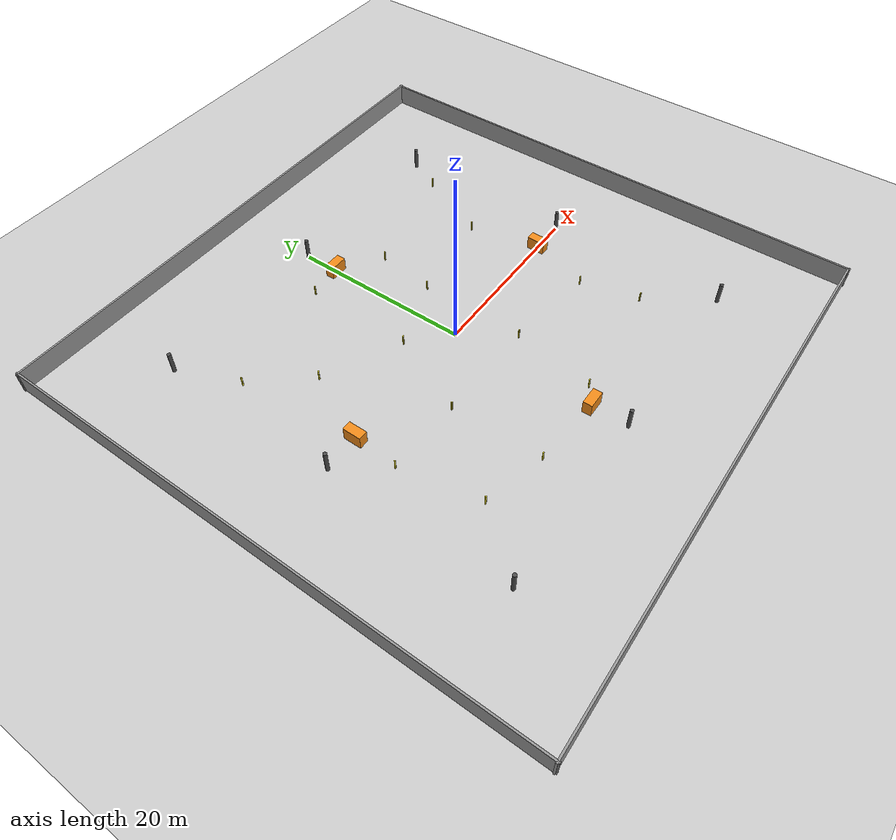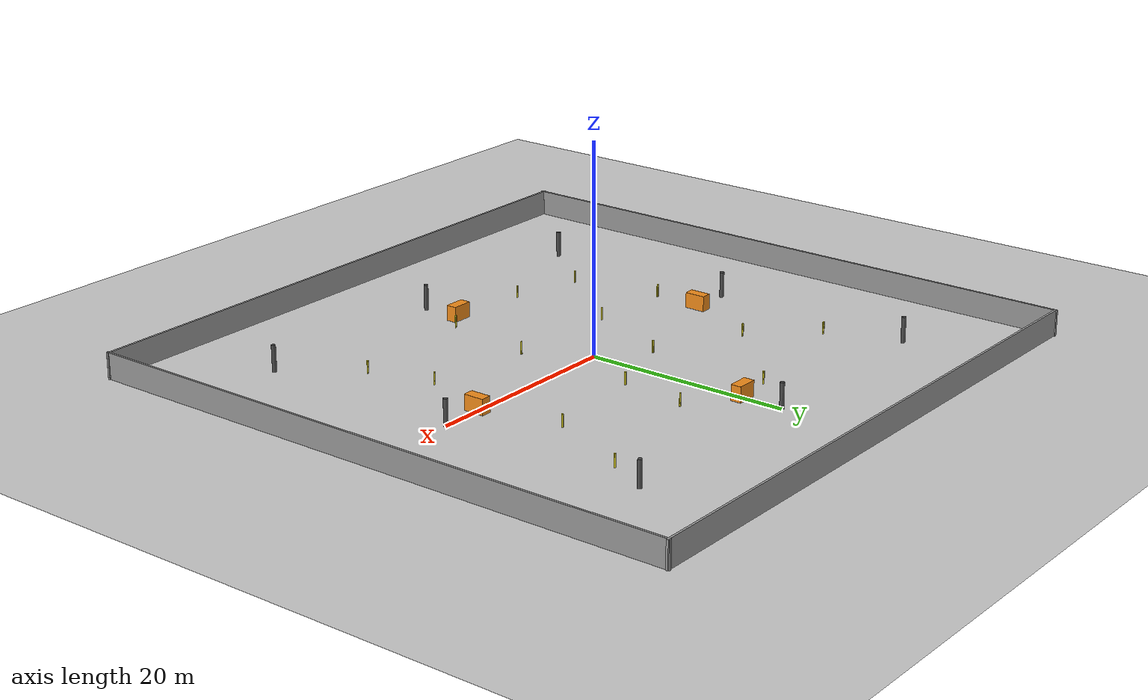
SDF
<?xml version="1.0"?>
<sdf version="1.6">
  <world name="warehouse_open">

    <!-- 기본 광원/바닥 (Gazebo 내장 모델) -->
    <include><uri>model://sun</uri></include>
    <include><uri>model://ground_plane</uri></include>

    <scene>
      <ambient>0.5 0.5 0.5 1</ambient>
      <background>0.7 0.7 0.7 1</background>
      <shadows>true</shadows>
    </scene>

    <physics type="ode">
      <real_time_update_rate>1000.0</real_time_update_rate>
      <max_step_size>0.001</max_step_size>
      <real_time_factor>1.0</real_time_factor>
    </physics>

    <!-- ===================== 외벽 (60x60, 높이 2.5m) ===================== -->
    <model name="warehouse_walls">
      <static>true</static>
      <link name="walls">
        <!-- North (y=+30) -->
        <collision name="c_north"><pose>0 30 1.25 0 0 0</pose>
          <geometry><box><size>60.4 0.2 2.5</size></box></geometry></collision>
        <visual name="v_north"><pose>0 30 1.25 0 0 0</pose>
          <geometry><box><size>60.4 0.2 2.5</size></box></geometry>
          <material><script><uri>file://media/materials/scripts/gazebo.material</uri><name>Gazebo/Grey</name></script></material></visual>
        <!-- South (y=-30) -->
        <collision name="c_south"><pose>0 -30 1.25 0 0 0</pose>
          <geometry><box><size>60.4 0.2 2.5</size></box></geometry></collision>
        <visual name="v_south"><pose>0 -30 1.25 0 0 0</pose>
          <geometry><box><size>60.4 0.2 2.5</size></box></geometry>
          <material><script><uri>file://media/materials/scripts/gazebo.material</uri><name>Gazebo/Grey</name></script></material></visual>
        <!-- East (x=+30) -->
        <collision name="c_east"><pose>30 0 1.25 0 0 0</pose>
          <geometry><box><size>0.2 60.4 2.5</size></box></geometry></collision>
        <visual name="v_east"><pose>30 0 1.25 0 0 0</pose>
          <geometry><box><size>0.2 60.4 2.5</size></box></geometry>
          <material><script><uri>file://media/materials/scripts/gazebo.material</uri><name>Gazebo/Grey</name></script></material></visual>
        <!-- West (x=-30) -->
        <collision name="c_west"><pose>-30 0 1.25 0 0 0</pose>
          <geometry><box><size>0.2 60.4 2.5</size></box></geometry></collision>
        <visual name="v_west"><pose>-30 0 1.25 0 0 0</pose>
          <geometry><box><size>0.2 60.4 2.5</size></box></geometry>
          <material><script><uri>file://media/materials/scripts/gazebo.material</uri><name>Gazebo/Grey</name></script></material></visual>
      </link>
    </model>

    <!-- ===================== 구조 기둥 8개 (지름 0.4m, 20m 격자, 중앙 비움) ===================== -->
    <model name="pillars">
      <static>true</static>
      <link name="pillars_link">
        <!-- 각 기둥: 반지름 0.2, 길이 2.5, z중심 1.25 -->
        <collision name="c_p1"><pose>-20 -20 1.25 0 0 0</pose><geometry><cylinder><radius>0.2</radius><length>2.5</length></cylinder></geometry></collision>
        <visual name="v_p1"><pose>-20 -20 1.25 0 0 0</pose><geometry><cylinder><radius>0.2</radius><length>2.5</length></cylinder></geometry><material><script><uri>file://media/materials/scripts/gazebo.material</uri><name>Gazebo/DarkGrey</name></script></material></visual>
        <collision name="c_p2"><pose>0 -20 1.25 0 0 0</pose><geometry><cylinder><radius>0.2</radius><length>2.5</length></cylinder></geometry></collision>
        <visual name="v_p2"><pose>0 -20 1.25 0 0 0</pose><geometry><cylinder><radius>0.2</radius><length>2.5</length></cylinder></geometry><material><script><uri>file://media/materials/scripts/gazebo.material</uri><name>Gazebo/DarkGrey</name></script></material></visual>
        <collision name="c_p3"><pose>20 -20 1.25 0 0 0</pose><geometry><cylinder><radius>0.2</radius><length>2.5</length></cylinder></geometry></collision>
        <visual name="v_p3"><pose>20 -20 1.25 0 0 0</pose><geometry><cylinder><radius>0.2</radius><length>2.5</length></cylinder></geometry><material><script><uri>file://media/materials/scripts/gazebo.material</uri><name>Gazebo/DarkGrey</name></script></material></visual>
        <collision name="c_p4"><pose>-20 0 1.25 0 0 0</pose><geometry><cylinder><radius>0.2</radius><length>2.5</length></cylinder></geometry></collision>
        <visual name="v_p4"><pose>-20 0 1.25 0 0 0</pose><geometry><cylinder><radius>0.2</radius><length>2.5</length></cylinder></geometry><material><script><uri>file://media/materials/scripts/gazebo.material</uri><name>Gazebo/DarkGrey</name></script></material></visual>
        <collision name="c_p5"><pose>20 0 1.25 0 0 0</pose><geometry><cylinder><radius>0.2</radius><length>2.5</length></cylinder></geometry></collision>
        <visual name="v_p5"><pose>20 0 1.25 0 0 0</pose><geometry><cylinder><radius>0.2</radius><length>2.5</length></cylinder></geometry><material><script><uri>file://media/materials/scripts/gazebo.material</uri><name>Gazebo/DarkGrey</name></script></material></visual>
        <collision name="c_p6"><pose>-20 20 1.25 0 0 0</pose><geometry><cylinder><radius>0.2</radius><length>2.5</length></cylinder></geometry></collision>
        <visual name="v_p6"><pose>-20 20 1.25 0 0 0</pose><geometry><cylinder><radius>0.2</radius><length>2.5</length></cylinder></geometry><material><script><uri>file://media/materials/scripts/gazebo.material</uri><name>Gazebo/DarkGrey</name></script></material></visual>
        <collision name="c_p7"><pose>0 20 1.25 0 0 0</pose><geometry><cylinder><radius>0.2</radius><length>2.5</length></cylinder></geometry></collision>
        <visual name="v_p7"><pose>0 20 1.25 0 0 0</pose><geometry><cylinder><radius>0.2</radius><length>2.5</length></cylinder></geometry><material><script><uri>file://media/materials/scripts/gazebo.material</uri><name>Gazebo/DarkGrey</name></script></material></visual>
        <collision name="c_p8"><pose>20 20 1.25 0 0 0</pose><geometry><cylinder><radius>0.2</radius><length>2.5</length></cylinder></geometry></collision>
        <visual name="v_p8"><pose>20 20 1.25 0 0 0</pose><geometry><cylinder><radius>0.2</radius><length>2.5</length></cylinder></geometry><material><script><uri>file://media/materials/scripts/gazebo.material</uri><name>Gazebo/DarkGrey</name></script></material></visual>
      </link>
    </model>

    <!-- ===================== 적재 랙 (팔레트 박스 더미, 일부 기둥 가림) ===================== -->
    <model name="racks">
      <static>true</static>
      <link name="racks_link">
        <!-- 각 랙: 2 x 1 x 1.5, z중심 0.75. 기둥과 중앙 사이에 놓아 시선 차단 -->
        <collision name="c_r1"><pose>16 0 0.75 0 0 0</pose><geometry><box><size>1 2 1.5</size></box></geometry></collision>
        <visual name="v_r1"><pose>16 0 0.75 0 0 0</pose><geometry><box><size>1 2 1.5</size></box></geometry><material><script><uri>file://media/materials/scripts/gazebo.material</uri><name>Gazebo/Orange</name></script></material></visual>
        <collision name="c_r2"><pose>-16 0 0.75 0 0 0</pose><geometry><box><size>1 2 1.5</size></box></geometry></collision>
        <visual name="v_r2"><pose>-16 0 0.75 0 0 0</pose><geometry><box><size>1 2 1.5</size></box></geometry><material><script><uri>file://media/materials/scripts/gazebo.material</uri><name>Gazebo/Orange</name></script></material></visual>
        <collision name="c_r3"><pose>0 16 0.75 0 0 0</pose><geometry><box><size>2 1 1.5</size></box></geometry></collision>
        <visual name="v_r3"><pose>0 16 0.75 0 0 0</pose><geometry><box><size>2 1 1.5</size></box></geometry><material><script><uri>file://media/materials/scripts/gazebo.material</uri><name>Gazebo/Orange</name></script></material></visual>
        <collision name="c_r4"><pose>0 -16 0.75 0 0 0</pose><geometry><box><size>2 1 1.5</size></box></geometry></collision>
        <visual name="v_r4"><pose>0 -16 0.75 0 0 0</pose><geometry><box><size>2 1 1.5</size></box></geometry><material><script><uri>file://media/materials/scripts/gazebo.material</uri><name>Gazebo/Orange</name></script></material></visual>
      </link>
    </model>

    <model name="reflectors">
      <static>true</static>
      <link name="reflectors_link">
        <!-- M6 반사판: 가는 폴(r0.08). 검출=기하(폭), 식별=성좌. occupancy 맵엔 없음. -->
        <collision name="c_R00"><pose>-14.67 -13.67 0.6 0 0 0</pose><geometry><cylinder><radius>0.08</radius><length>1.2</length></cylinder></geometry></collision>
        <visual name="v_R00"><pose>-14.67 -13.67 0.6 0 0 0</pose><geometry><cylinder><radius>0.08</radius><length>1.2</length></cylinder></geometry><material><script><uri>file://media/materials/scripts/gazebo.material</uri><name>Gazebo/Yellow</name></script></material></visual>
        <collision name="c_R01"><pose>-16.34 -4.93 0.6 0 0 0</pose><geometry><cylinder><radius>0.08</radius><length>1.2</length></cylinder></geometry></collision>
        <visual name="v_R01"><pose>-16.34 -4.93 0.6 0 0 0</pose><geometry><cylinder><radius>0.08</radius><length>1.2</length></cylinder></geometry><material><script><uri>file://media/materials/scripts/gazebo.material</uri><name>Gazebo/Yellow</name></script></material></visual>
        <collision name="c_R02"><pose>-12.49 7.54 0.6 0 0 0</pose><geometry><cylinder><radius>0.08</radius><length>1.2</length></cylinder></geometry></collision>
        <visual name="v_R02"><pose>-12.49 7.54 0.6 0 0 0</pose><geometry><cylinder><radius>0.08</radius><length>1.2</length></cylinder></geometry><material><script><uri>file://media/materials/scripts/gazebo.material</uri><name>Gazebo/Yellow</name></script></material></visual>
        <collision name="c_R03"><pose>-17.4 13.13 0.6 0 0 0</pose><geometry><cylinder><radius>0.08</radius><length>1.2</length></cylinder></geometry></collision>
        <visual name="v_R03"><pose>-17.4 13.13 0.6 0 0 0</pose><geometry><cylinder><radius>0.08</radius><length>1.2</length></cylinder></geometry><material><script><uri>file://media/materials/scripts/gazebo.material</uri><name>Gazebo/Yellow</name></script></material></visual>
        <collision name="c_R04"><pose>-7.87 -15.38 0.6 0 0 0</pose><geometry><cylinder><radius>0.08</radius><length>1.2</length></cylinder></geometry></collision>
        <visual name="v_R04"><pose>-7.87 -15.38 0.6 0 0 0</pose><geometry><cylinder><radius>0.08</radius><length>1.2</length></cylinder></geometry><material><script><uri>file://media/materials/scripts/gazebo.material</uri><name>Gazebo/Yellow</name></script></material></visual>
        <collision name="c_R05"><pose>-8.01 -5.28 0.6 0 0 0</pose><geometry><cylinder><radius>0.08</radius><length>1.2</length></cylinder></geometry></collision>
        <visual name="v_R05"><pose>-8.01 -5.28 0.6 0 0 0</pose><geometry><cylinder><radius>0.08</radius><length>1.2</length></cylinder></geometry><material><script><uri>file://media/materials/scripts/gazebo.material</uri><name>Gazebo/Yellow</name></script></material></visual>
        <collision name="c_R06"><pose>-4.05 3.58 0.6 0 0 0</pose><geometry><cylinder><radius>0.08</radius><length>1.2</length></cylinder></geometry></collision>
        <visual name="v_R06"><pose>-4.05 3.58 0.6 0 0 0</pose><geometry><cylinder><radius>0.08</radius><length>1.2</length></cylinder></geometry><material><script><uri>file://media/materials/scripts/gazebo.material</uri><name>Gazebo/Yellow</name></script></material></visual>
        <collision name="c_R07"><pose>-3.87 15.58 0.6 0 0 0</pose><geometry><cylinder><radius>0.08</radius><length>1.2</length></cylinder></geometry></collision>
        <visual name="v_R07"><pose>-3.87 15.58 0.6 0 0 0</pose><geometry><cylinder><radius>0.08</radius><length>1.2</length></cylinder></geometry><material><script><uri>file://media/materials/scripts/gazebo.material</uri><name>Gazebo/Yellow</name></script></material></visual>
        <collision name="c_R08"><pose>1.95 -14.62 0.6 0 0 0</pose><geometry><cylinder><radius>0.08</radius><length>1.2</length></cylinder></geometry></collision>
        <visual name="v_R08"><pose>1.95 -14.62 0.6 0 0 0</pose><geometry><cylinder><radius>0.08</radius><length>1.2</length></cylinder></geometry><material><script><uri>file://media/materials/scripts/gazebo.material</uri><name>Gazebo/Yellow</name></script></material></visual>
        <collision name="c_R09"><pose>3.46 -5.54 0.6 0 0 0</pose><geometry><cylinder><radius>0.08</radius><length>1.2</length></cylinder></geometry></collision>
        <visual name="v_R09"><pose>3.46 -5.54 0.6 0 0 0</pose><geometry><cylinder><radius>0.08</radius><length>1.2</length></cylinder></geometry><material><script><uri>file://media/materials/scripts/gazebo.material</uri><name>Gazebo/Yellow</name></script></material></visual>
        <collision name="c_R10"><pose>3.61 6.24 0.6 0 0 0</pose><geometry><cylinder><radius>0.08</radius><length>1.2</length></cylinder></geometry></collision>
        <visual name="v_R10"><pose>3.61 6.24 0.6 0 0 0</pose><geometry><cylinder><radius>0.08</radius><length>1.2</length></cylinder></geometry><material><script><uri>file://media/materials/scripts/gazebo.material</uri><name>Gazebo/Yellow</name></script></material></visual>
        <collision name="c_R11"><pose>4.62 12.8 0.6 0 0 0</pose><geometry><cylinder><radius>0.08</radius><length>1.2</length></cylinder></geometry></collision>
        <visual name="v_R11"><pose>4.62 12.8 0.6 0 0 0</pose><geometry><cylinder><radius>0.08</radius><length>1.2</length></cylinder></geometry><material><script><uri>file://media/materials/scripts/gazebo.material</uri><name>Gazebo/Yellow</name></script></material></visual>
        <collision name="c_R12"><pose>15.29 -13.21 0.6 0 0 0</pose><geometry><cylinder><radius>0.08</radius><length>1.2</length></cylinder></geometry></collision>
        <visual name="v_R12"><pose>15.29 -13.21 0.6 0 0 0</pose><geometry><cylinder><radius>0.08</radius><length>1.2</length></cylinder></geometry><material><script><uri>file://media/materials/scripts/gazebo.material</uri><name>Gazebo/Yellow</name></script></material></visual>
        <collision name="c_R13"><pose>13.76 -6.78 0.6 0 0 0</pose><geometry><cylinder><radius>0.08</radius><length>1.2</length></cylinder></geometry></collision>
        <visual name="v_R13"><pose>13.76 -6.78 0.6 0 0 0</pose><geometry><cylinder><radius>0.08</radius><length>1.2</length></cylinder></geometry><material><script><uri>file://media/materials/scripts/gazebo.material</uri><name>Gazebo/Yellow</name></script></material></visual>
        <collision name="c_R14"><pose>14.28 7.79 0.6 0 0 0</pose><geometry><cylinder><radius>0.08</radius><length>1.2</length></cylinder></geometry></collision>
        <visual name="v_R14"><pose>14.28 7.79 0.6 0 0 0</pose><geometry><cylinder><radius>0.08</radius><length>1.2</length></cylinder></geometry><material><script><uri>file://media/materials/scripts/gazebo.material</uri><name>Gazebo/Yellow</name></script></material></visual>
        <collision name="c_R15"><pose>18.05 16.1 0.6 0 0 0</pose><geometry><cylinder><radius>0.08</radius><length>1.2</length></cylinder></geometry></collision>
        <visual name="v_R15"><pose>18.05 16.1 0.6 0 0 0</pose><geometry><cylinder><radius>0.08</radius><length>1.2</length></cylinder></geometry><material><script><uri>file://media/materials/scripts/gazebo.material</uri><name>Gazebo/Yellow</name></script></material></visual>
      </link>
    </model>

  </world>
</sdf>
